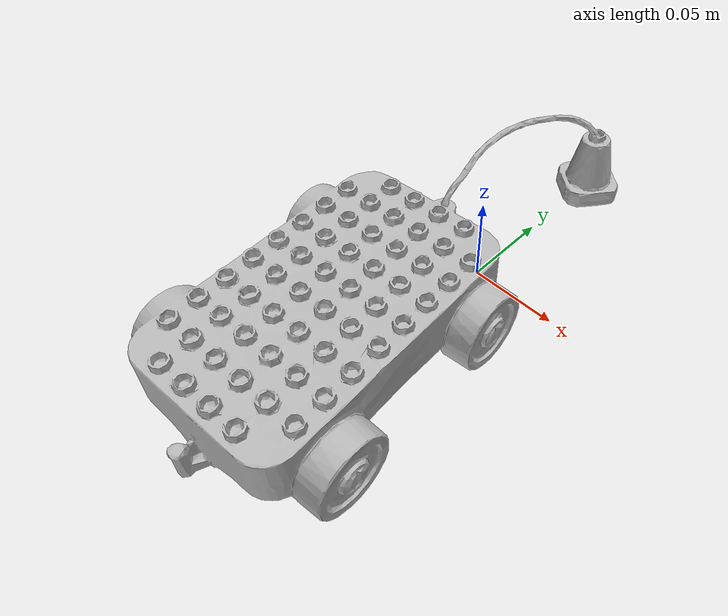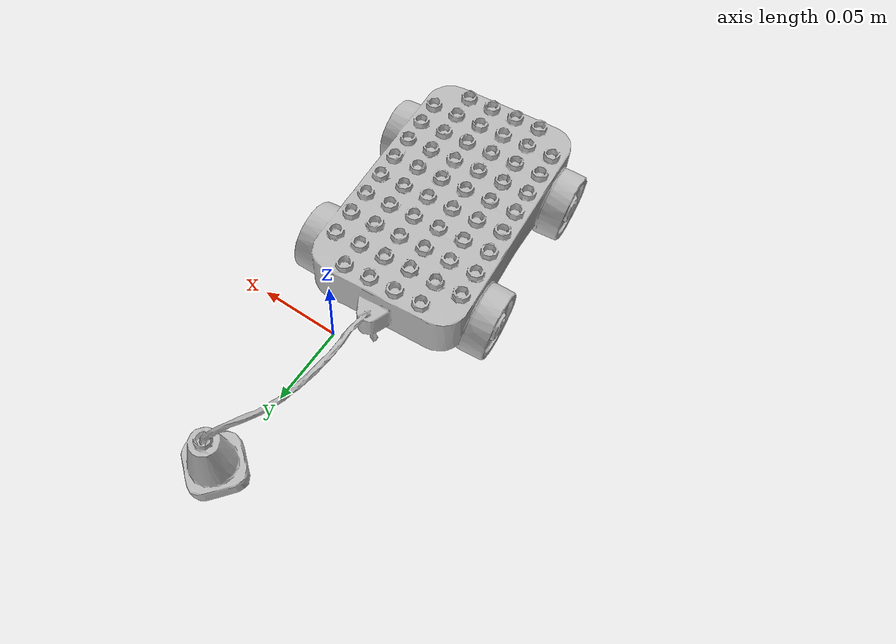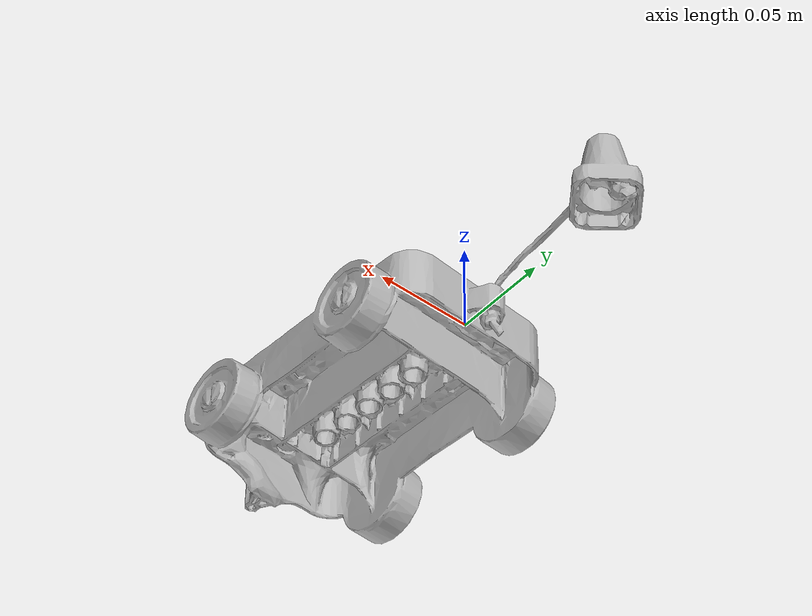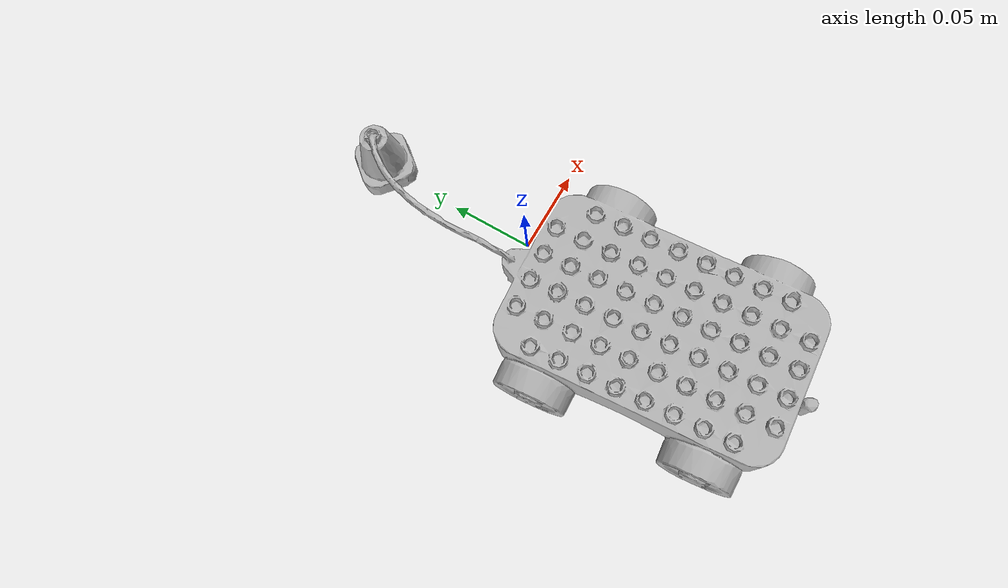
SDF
<?xml version='1.0'?>
<sdf version="1.4">
  <model name="g_lego_duplo">
    <static>false</static>
    <link name="link">
      <inertial>
        <pose>-0.01440079954550051 -0.08344438751622156 0.031183760567335284 -2.9863348819126774 -1.539472904089481 1.372364232159005</pose>
        <mass>0.00024760532090067737</mass>
        <inertia>
          <ixx>1.3615207159566274e-06</ixx>
          <ixy>5.816891158533652e-24</ixy>
          <ixz>-7.554959084259458e-23</ixz>
          <iyy>1.0529228558439234e-06</iyy>
          <iyz>2.992624705834659e-24</iyz>
          <izz>3.8773471220076056e-07</izz>
        </inertia>
      </inertial>
      <collision name="collision">
        <geometry>
          <mesh>
            <!-- Use a downsampled mesh for collisions -->
            <uri>model://073-g_lego_duplo/google_16k/073-g_lego_duplo.obj</uri>
            </mesh>
        </geometry>
        <surface>
          <friction>
            <ode>
              <mu>0.9</mu>
              <mu2>0.9</mu2>
            </ode>
          </friction>
          <contact>
            <ode>
              <kp>1000000000000.0</kp>
              <kd>1</kd>
              <min_depth>0.0001</min_depth>
              <max_vel>0.01</max_vel>
            </ode>
          </contact>
          <bounce>
            <restitution_coefficient>0.1</restitution_coefficient>
            <threshold>1000.0</threshold>
          </bounce>
        </surface>
      </collision>
      <visual name="visual">
        <geometry>
          <mesh>
            <uri>model://073-g_lego_duplo/google_16k/073-g_lego_duplo.dae</uri>
            </mesh>
        </geometry>
      </visual>
    </link>
  </model>
</sdf>
